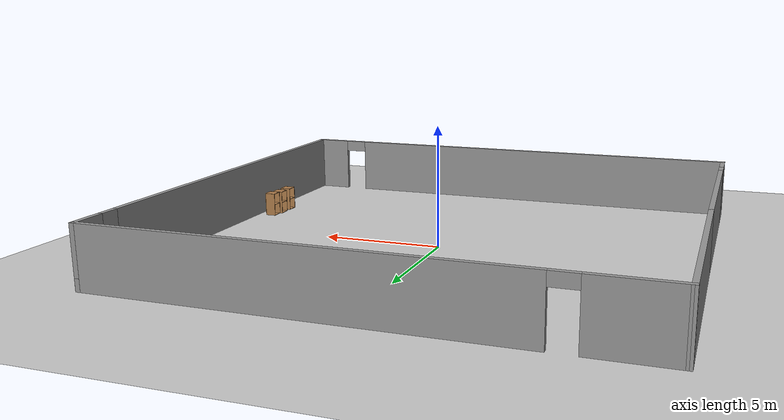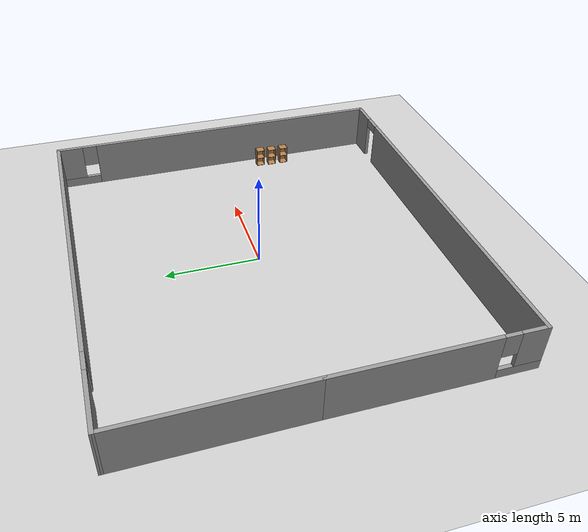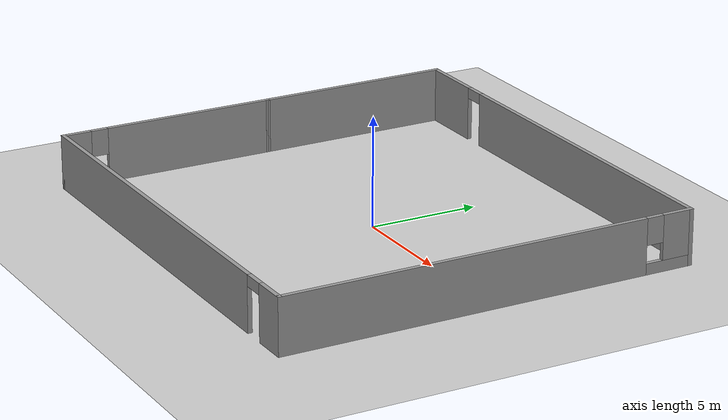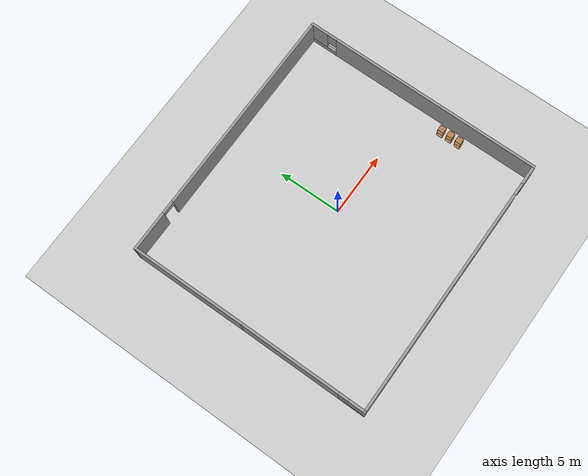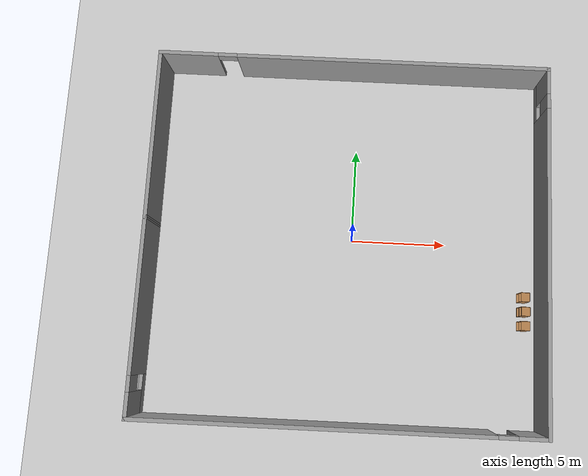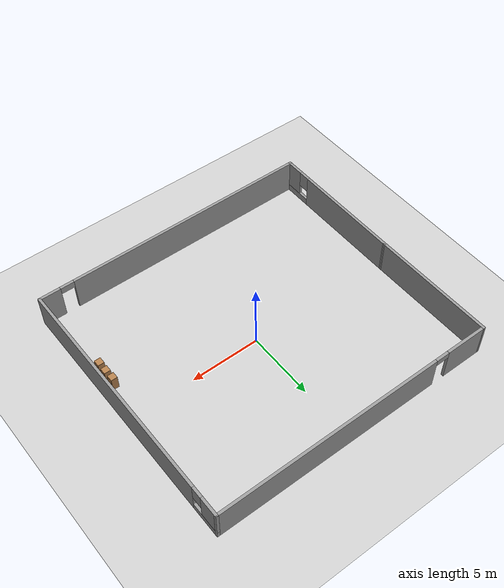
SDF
<sdf version="1.6">
 <world name="default">
  <model name="ground_plane">
   <static>1</static>
   <link name="link">
    <collision name="collision">
     <geometry><plane><normal>0 0 1</normal><size>100 100</size></plane></geometry>
     <surface><friction><ode><mu>100</mu><mu2>50</mu2></ode></friction></surface>
    </collision>
    <visual name="visual">
     <cast_shadows>0</cast_shadows>
     <geometry><plane><normal>0 0 1</normal><size>100 100</size></plane></geometry>
     <material>
      <script><uri>file://media/materials/scripts/gazebo.material</uri><name>Gazebo/Grey</name></script>
     </material>
    </visual>
    <velocity_decay><linear>0</linear><angular>0</angular></velocity_decay>
   </link>
  </model>
  <model name="BuildingDefaultNameXX1">
   <link name="Wall_10">
    <collision name="Wall_10_Collision">
     <geometry><box><size>9.16626 0.2 2.5</size></box></geometry>
     <pose>0 0 1.25 0 -0 0</pose>
    </collision>
    <visual name="Wall_10_Visual">
     <pose>0 0 1.25 0 -0 0</pose>
     <geometry><box><size>9.16626 0.2 2.5</size></box></geometry>
     <material>
      <script><uri>file://media/materials/scripts/gazebo.material</uri><name>Gazebo/Grey</name></script>
     </material>
    </visual>
    <velocity_decay><linear>0</linear><angular>0</angular></velocity_decay>
    <pose>-10.6432 4.8497 0 0 0 -1.56526</pose>
   </link>
   <link name="Wall_6">
    <pose>-10.6184 -4.64118 0 0 0 -1.5708</pose>
    <visual name="Wall_6_Visual_0">
     <pose>-1.08743 0 1.25 0 -0 0</pose>
     <geometry><box><size>8.04077 0.2 2.5</size></box></geometry>
     <material>
      <script><uri>file://media/materials/scripts/gazebo.material</uri><name>Gazebo/Grey</name></script>
     </material>
    </visual>
    <collision name="Wall_6_Collision_0">
     <geometry><box><size>8.04077 0.2 2.5</size></box></geometry>
     <pose>-1.08743 0 1.25 0 -0 0</pose>
    </collision>
    <visual name="Wall_6_Visual_1">
     <pose>4.02039 0 0.25 0 -0 0</pose>
     <geometry><box><size>2.17486 0.2 0.5</size></box></geometry>
     <material>
      <script><uri>file://media/materials/scripts/gazebo.material</uri><name>Gazebo/Grey</name></script>
     </material>
    </visual>
    <collision name="Wall_6_Collision_1">
     <geometry><box><size>2.17486 0.2 0.5</size></box></geometry>
     <pose>4.02039 0 0.25 0 -0 0</pose>
    </collision>
    <visual name="Wall_6_Visual_2">
     <pose>4.42038 0 1.5 0 -0 0</pose>
     <geometry><box><size>1.37486 0.2 2</size></box></geometry>
     <material>
      <script><uri>file://media/materials/scripts/gazebo.material</uri><name>Gazebo/Grey</name></script>
     </material>
    </visual>
    <collision name="Wall_6_Collision_2">
     <geometry><box><size>1.37486 0.2 2</size></box></geometry>
     <pose>4.42038 0 1.5 0 -0 0</pose>
    </collision>
    <visual name="Wall_6_Visual_3">
     <pose>3.33296 0 1.9 0 -0 0</pose>
     <geometry><box><size>0.8 0.2 1.2</size></box></geometry>
     <material>
      <script><uri>file://media/materials/scripts/gazebo.material</uri><name>Gazebo/Grey</name></script>
     </material>
    </visual>
    <collision name="Wall_6_Collision_3">
     <geometry><box><size>0.8 0.2 1.2</size></box></geometry>
     <pose>3.33296 0 1.9 0 -0 0</pose>
    </collision>
    <velocity_decay><linear>0</linear><angular>0</angular></velocity_decay>
   </link>
   <link name="Wall_7">
    <pose>-0.314916 -9.649 0 0 -0 0</pose>
    <visual name="Wall_7_Visual_0">
     <pose>-1.30026 0 1.25 0 -0 0</pose>
     <geometry><box><size>18.2064 0.2 2.5</size></box></geometry>
     <material>
      <script><uri>file://media/materials/scripts/gazebo.material</uri><name>Gazebo/Grey</name></script>
     </material>
    </visual>
    <collision name="Wall_7_Collision_0">
     <geometry><box><size>18.2064 0.2 2.5</size></box></geometry>
     <pose>-1.30026 0 1.25 0 -0 0</pose>
    </collision>
    <visual name="Wall_7_Visual_1">
     <pose>9.60322 0 1.25 0 -0 0</pose>
     <geometry><box><size>1.60053 0.2 2.5</size></box></geometry>
     <material>
      <script><uri>file://media/materials/scripts/gazebo.material</uri><name>Gazebo/Grey</name></script>
     </material>
    </visual>
    <collision name="Wall_7_Collision_1">
     <geometry><box><size>1.60053 0.2 2.5</size></box></geometry>
     <pose>9.60322 0 1.25 0 -0 0</pose>
    </collision>
    <visual name="Wall_7_Visual_2">
     <pose>8.30296 0 2.25 0 -0 0</pose>
     <geometry><box><size>1 0.2 0.5</size></box></geometry>
     <material>
      <script><uri>file://media/materials/scripts/gazebo.material</uri><name>Gazebo/Grey</name></script>
     </material>
    </visual>
    <collision name="Wall_7_Collision_2">
     <geometry><box><size>1 0.2 0.5</size></box></geometry>
     <pose>8.30296 0 2.25 0 -0 0</pose>
    </collision>
    <velocity_decay><linear>0</linear><angular>0</angular></velocity_decay>
   </link>
   <link name="Wall_8">
    <pose>9.98857 -0.15812 0 0 -0 1.5708</pose>
    <visual name="Wall_8_Visual_0">
     <pose>-1.13395 0 1.25 0 -0 0</pose>
     <geometry><box><size>16.9138 0.2 2.5</size></box></geometry>
     <material>
      <script><uri>file://media/materials/scripts/gazebo.material</uri><name>Gazebo/Grey</name></script>
     </material>
    </visual>
    <collision name="Wall_8_Collision_0">
     <geometry><box><size>16.9138 0.2 2.5</size></box></geometry>
     <pose>-1.13395 0 1.25 0 -0 0</pose>
    </collision>
    <visual name="Wall_8_Visual_1">
     <pose>8.45692 0 0.25 0 -0 0</pose>
     <geometry><box><size>2.26791 0.2 0.5</size></box></geometry>
     <material>
      <script><uri>file://media/materials/scripts/gazebo.material</uri><name>Gazebo/Grey</name></script>
     </material>
    </visual>
    <collision name="Wall_8_Collision_1">
     <geometry><box><size>2.26791 0.2 0.5</size></box></geometry>
     <pose>8.45692 0 0.25 0 -0 0</pose>
    </collision>
    <visual name="Wall_8_Visual_2">
     <pose>8.85692 0 1.5 0 -0 0</pose>
     <geometry><box><size>1.46791 0.2 2</size></box></geometry>
     <material>
      <script><uri>file://media/materials/scripts/gazebo.material</uri><name>Gazebo/Grey</name></script>
     </material>
    </visual>
    <collision name="Wall_8_Collision_2">
     <geometry><box><size>1.46791 0.2 2</size></box></geometry>
     <pose>8.85692 0 1.5 0 -0 0</pose>
    </collision>
    <visual name="Wall_8_Visual_3">
     <pose>7.72297 0 1.9 0 -0 0</pose>
     <geometry><box><size>0.8 0.2 1.2</size></box></geometry>
     <material>
      <script><uri>file://media/materials/scripts/gazebo.material</uri><name>Gazebo/Grey</name></script>
     </material>
    </visual>
    <collision name="Wall_8_Collision_3">
     <geometry><box><size>0.8 0.2 1.2</size></box></geometry>
     <pose>7.72297 0 1.9 0 -0 0</pose>
    </collision>
    <velocity_decay><linear>0</linear><angular>0</angular></velocity_decay>
   </link>
   <link name="Wall_9">
    <pose>-0.339737 9.33276 0 0 -0 3.14159</pose>
    <visual name="Wall_9_Visual_0">
     <pose>-2.09117 0 1.25 0 -0 0</pose>
     <geometry><box><size>16.6743 0.2 2.5</size></box></geometry>
     <material>
      <script><uri>file://media/materials/scripts/gazebo.material</uri><name>Gazebo/Grey</name></script>
     </material>
    </visual>
    <collision name="Wall_9_Collision_0">
     <geometry><box><size>16.6743 0.2 2.5</size></box></geometry>
     <pose>-2.09117 0 1.25 0 -0 0</pose>
    </collision>
    <visual name="Wall_9_Visual_1">
     <pose>8.83714 0 1.25 0 -0 0</pose>
     <geometry><box><size>3.18234 0.2 2.5</size></box></geometry>
     <material>
      <script><uri>file://media/materials/scripts/gazebo.material</uri><name>Gazebo/Grey</name></script>
     </material>
    </visual>
    <collision name="Wall_9_Collision_1">
     <geometry><box><size>3.18234 0.2 2.5</size></box></geometry>
     <pose>8.83714 0 1.25 0 -0 0</pose>
    </collision>
    <visual name="Wall_9_Visual_2">
     <pose>6.74597 0 2.25 0 -0 0</pose>
     <geometry><box><size>1 0.2 0.5</size></box></geometry>
     <material>
      <script><uri>file://media/materials/scripts/gazebo.material</uri><name>Gazebo/Grey</name></script>
     </material>
    </visual>
    <collision name="Wall_9_Collision_2">
     <geometry><box><size>1 0.2 0.5</size></box></geometry>
     <pose>6.74597 0 2.25 0 -0 0</pose>
    </collision>
    <velocity_decay><linear>0</linear><angular>0</angular></velocity_decay>
   </link>
   <static>1</static>
  </model>
  <model name="cabinet">
   <static>1</static>
   <link name="cabinet_bottom_plate">
    <inertial>
     <pose>0 0 -1 0 -0 0</pose>
     <inertia><ixx>2.05</ixx><ixy>0</ixy><ixz>0</ixz><iyy>2.05</iyy><iyz>0</iyz><izz>2.05</izz></inertia>
     <mass>25</mass>
    </inertial>
    <collision name="cabinet_bottom_plate_geom">
     <pose>0 0 0.01 0 -0 0</pose>
     <geometry><box><size>0.45 0.45 0.02</size></box></geometry>
    </collision>
    <visual name="cabinet_bottom_plate_geom_visual">
     <pose>0 0 0.01 0 -0 0</pose>
     <geometry><box><size>0.45 0.45 0.02</size></box></geometry>
     <material>
      <script><uri>file://media/materials/scripts/gazebo.material</uri><name>Gazebo/Wood</name></script>
     </material>
    </visual>
    <collision name="cabinet_bottom_plate_geom_cabinet_back_plate">
     <pose>0.235 0 0.51 0 -0 0</pose>
     <geometry><box><size>0.02 0.45 1.02</size></box></geometry>
    </collision>
    <visual name="cabinet_bottom_plate_geom_cabinet_back_plate_visual">
     <pose>0.235 0 0.51 0 -0 0</pose>
     <geometry><box><size>0.02 0.45 1.02</size></box></geometry>
     <material>
      <script><uri>file://media/materials/scripts/gazebo.material</uri><name>Gazebo/Wood</name></script>
     </material>
    </visual>
    <collision name="cabinet_bottom_plate_geom_cabinet_left_plate">
     <pose>0 0.235 0.51 0 -0 0</pose>
     <geometry><box><size>0.45 0.02 1.02</size></box></geometry>
    </collision>
    <visual name="cabinet_bottom_plate_geom_cabinet_left_plate_visual">
     <pose>0 0.235 0.51 0 -0 0</pose>
     <geometry><box><size>0.45 0.02 1.02</size></box></geometry>
     <material>
      <script><uri>file://media/materials/scripts/gazebo.material</uri><name>Gazebo/Wood</name></script>
     </material>
    </visual>
    <collision name="cabinet_bottom_plate_geom_cabinet_middle_plate">
     <pose>0 0 0.51 0 -0 0</pose>
     <geometry><box><size>0.45 0.45 0.02</size></box></geometry>
    </collision>
    <visual name="cabinet_bottom_plate_geom_cabinet_middle_plate_visual">
     <pose>0 0 0.51 0 -0 0</pose>
     <geometry><box><size>0.45 0.45 0.02</size></box></geometry>
     <material>
      <script><uri>file://media/materials/scripts/gazebo.material</uri><name>Gazebo/Wood</name></script>
     </material>
    </visual>
    <collision name="cabinet_bottom_plate_geom_cabinet_right_plate">
     <pose>0 -0.235 0.51 0 -0 0</pose>
     <geometry><box><size>0.45 0.02 1.02</size></box></geometry>
    </collision>
    <visual name="cabinet_bottom_plate_geom_cabinet_right_plate_visual">
     <pose>0 -0.235 0.51 0 -0 0</pose>
     <geometry><box><size>0.45 0.02 1.02</size></box></geometry>
     <material>
      <script><uri>file://media/materials/scripts/gazebo.material</uri><name>Gazebo/Wood</name></script>
     </material>
    </visual>
    <collision name="cabinet_bottom_plate_geom_cabinet_top_plate">
     <pose>0 0 1.01 0 -0 0</pose>
     <geometry><box><size>0.45 0.45 0.02</size></box></geometry>
    </collision>
    <visual name="cabinet_bottom_plate_geom_cabinet_top_plate_visual">
     <pose>0 0 1.01 0 -0 0</pose>
     <geometry><box><size>0.45 0.45 0.02</size></box></geometry>
     <material>
      <script><uri>file://media/materials/scripts/gazebo.material</uri><name>Gazebo/Wood</name></script>
     </material>
    </visual>
    <velocity_decay><linear>0</linear><angular>0</angular></velocity_decay>
   </link>
   <pose>9.1924 -3.42603 0 0 -0 0</pose>
  </model>
  <model name="cabinet_0">
   <static>1</static>
   <link name="cabinet_bottom_plate">
    <inertial>
     <pose>0 0 -1 0 -0 0</pose>
     <inertia><ixx>2.05</ixx><ixy>0</ixy><ixz>0</ixz><iyy>2.05</iyy><iyz>0</iyz><izz>2.05</izz></inertia>
     <mass>25</mass>
    </inertial>
    <collision name="cabinet_bottom_plate_geom">
     <pose>0 0 0.01 0 -0 0</pose>
     <geometry><box><size>0.45 0.45 0.02</size></box></geometry>
    </collision>
    <visual name="cabinet_bottom_plate_geom_visual">
     <pose>0 0 0.01 0 -0 0</pose>
     <geometry><box><size>0.45 0.45 0.02</size></box></geometry>
     <material>
      <script><uri>file://media/materials/scripts/gazebo.material</uri><name>Gazebo/Wood</name></script>
     </material>
    </visual>
    <collision name="cabinet_bottom_plate_geom_cabinet_back_plate">
     <pose>0.235 0 0.51 0 -0 0</pose>
     <geometry><box><size>0.02 0.45 1.02</size></box></geometry>
    </collision>
    <visual name="cabinet_bottom_plate_geom_cabinet_back_plate_visual">
     <pose>0.235 0 0.51 0 -0 0</pose>
     <geometry><box><size>0.02 0.45 1.02</size></box></geometry>
     <material>
      <script><uri>file://media/materials/scripts/gazebo.material</uri><name>Gazebo/Wood</name></script>
     </material>
    </visual>
    <collision name="cabinet_bottom_plate_geom_cabinet_left_plate">
     <pose>0 0.235 0.51 0 -0 0</pose>
     <geometry><box><size>0.45 0.02 1.02</size></box></geometry>
    </collision>
    <visual name="cabinet_bottom_plate_geom_cabinet_left_plate_visual">
     <pose>0 0.235 0.51 0 -0 0</pose>
     <geometry><box><size>0.45 0.02 1.02</size></box></geometry>
     <material>
      <script><uri>file://media/materials/scripts/gazebo.material</uri><name>Gazebo/Wood</name></script>
     </material>
    </visual>
    <collision name="cabinet_bottom_plate_geom_cabinet_middle_plate">
     <pose>0 0 0.51 0 -0 0</pose>
     <geometry><box><size>0.45 0.45 0.02</size></box></geometry>
    </collision>
    <visual name="cabinet_bottom_plate_geom_cabinet_middle_plate_visual">
     <pose>0 0 0.51 0 -0 0</pose>
     <geometry><box><size>0.45 0.45 0.02</size></box></geometry>
     <material>
      <script><uri>file://media/materials/scripts/gazebo.material</uri><name>Gazebo/Wood</name></script>
     </material>
    </visual>
    <collision name="cabinet_bottom_plate_geom_cabinet_right_plate">
     <pose>0 -0.235 0.51 0 -0 0</pose>
     <geometry><box><size>0.45 0.02 1.02</size></box></geometry>
    </collision>
    <visual name="cabinet_bottom_plate_geom_cabinet_right_plate_visual">
     <pose>0 -0.235 0.51 0 -0 0</pose>
     <geometry><box><size>0.45 0.02 1.02</size></box></geometry>
     <material>
      <script><uri>file://media/materials/scripts/gazebo.material</uri><name>Gazebo/Wood</name></script>
     </material>
    </visual>
    <collision name="cabinet_bottom_plate_geom_cabinet_top_plate">
     <pose>0 0 1.01 0 -0 0</pose>
     <geometry><box><size>0.45 0.45 0.02</size></box></geometry>
    </collision>
    <visual name="cabinet_bottom_plate_geom_cabinet_top_plate_visual">
     <pose>0 0 1.01 0 -0 0</pose>
     <geometry><box><size>0.45 0.45 0.02</size></box></geometry>
     <material>
      <script><uri>file://media/materials/scripts/gazebo.material</uri><name>Gazebo/Wood</name></script>
     </material>
    </visual>
    <velocity_decay><linear>0</linear><angular>0</angular></velocity_decay>
   </link>
   <pose>9.18492 -4.1736 0 0 -0 0</pose>
  </model>
  <model name="cabinet_1">
   <static>1</static>
   <link name="cabinet_bottom_plate">
    <inertial>
     <pose>0 0 -1 0 -0 0</pose>
     <inertia><ixx>2.05</ixx><ixy>0</ixy><ixz>0</ixz><iyy>2.05</iyy><iyz>0</iyz><izz>2.05</izz></inertia>
     <mass>25</mass>
    </inertial>
    <collision name="cabinet_bottom_plate_geom">
     <pose>0 0 0.01 0 -0 0</pose>
     <geometry><box><size>0.45 0.45 0.02</size></box></geometry>
    </collision>
    <visual name="cabinet_bottom_plate_geom_visual">
     <pose>0 0 0.01 0 -0 0</pose>
     <geometry><box><size>0.45 0.45 0.02</size></box></geometry>
     <material>
      <script><uri>file://media/materials/scripts/gazebo.material</uri><name>Gazebo/Wood</name></script>
     </material>
    </visual>
    <collision name="cabinet_bottom_plate_geom_cabinet_back_plate">
     <pose>0.235 0 0.51 0 -0 0</pose>
     <geometry><box><size>0.02 0.45 1.02</size></box></geometry>
    </collision>
    <visual name="cabinet_bottom_plate_geom_cabinet_back_plate_visual">
     <pose>0.235 0 0.51 0 -0 0</pose>
     <geometry><box><size>0.02 0.45 1.02</size></box></geometry>
     <material>
      <script><uri>file://media/materials/scripts/gazebo.material</uri><name>Gazebo/Wood</name></script>
     </material>
    </visual>
    <collision name="cabinet_bottom_plate_geom_cabinet_left_plate">
     <pose>0 0.235 0.51 0 -0 0</pose>
     <geometry><box><size>0.45 0.02 1.02</size></box></geometry>
    </collision>
    <visual name="cabinet_bottom_plate_geom_cabinet_left_plate_visual">
     <pose>0 0.235 0.51 0 -0 0</pose>
     <geometry><box><size>0.45 0.02 1.02</size></box></geometry>
     <material>
      <script><uri>file://media/materials/scripts/gazebo.material</uri><name>Gazebo/Wood</name></script>
     </material>
    </visual>
    <collision name="cabinet_bottom_plate_geom_cabinet_middle_plate">
     <pose>0 0 0.51 0 -0 0</pose>
     <geometry><box><size>0.45 0.45 0.02</size></box></geometry>
    </collision>
    <visual name="cabinet_bottom_plate_geom_cabinet_middle_plate_visual">
     <pose>0 0 0.51 0 -0 0</pose>
     <geometry><box><size>0.45 0.45 0.02</size></box></geometry>
     <material>
      <script><uri>file://media/materials/scripts/gazebo.material</uri><name>Gazebo/Wood</name></script>
     </material>
    </visual>
    <collision name="cabinet_bottom_plate_geom_cabinet_right_plate">
     <pose>0 -0.235 0.51 0 -0 0</pose>
     <geometry><box><size>0.45 0.02 1.02</size></box></geometry>
    </collision>
    <visual name="cabinet_bottom_plate_geom_cabinet_right_plate_visual">
     <pose>0 -0.235 0.51 0 -0 0</pose>
     <geometry><box><size>0.45 0.02 1.02</size></box></geometry>
     <material>
      <script><uri>file://media/materials/scripts/gazebo.material</uri><name>Gazebo/Wood</name></script>
     </material>
    </visual>
    <collision name="cabinet_bottom_plate_geom_cabinet_top_plate">
     <pose>0 0 1.01 0 -0 0</pose>
     <geometry><box><size>0.45 0.45 0.02</size></box></geometry>
    </collision>
    <visual name="cabinet_bottom_plate_geom_cabinet_top_plate_visual">
     <pose>0 0 1.01 0 -0 0</pose>
     <geometry><box><size>0.45 0.45 0.02</size></box></geometry>
     <material>
      <script><uri>file://media/materials/scripts/gazebo.material</uri><name>Gazebo/Wood</name></script>
     </material>
    </visual>
   </link>
   <pose>9.16042 -2.68558 0.059088 0 -0 0</pose>
  </model>
 </world>
</sdf>
